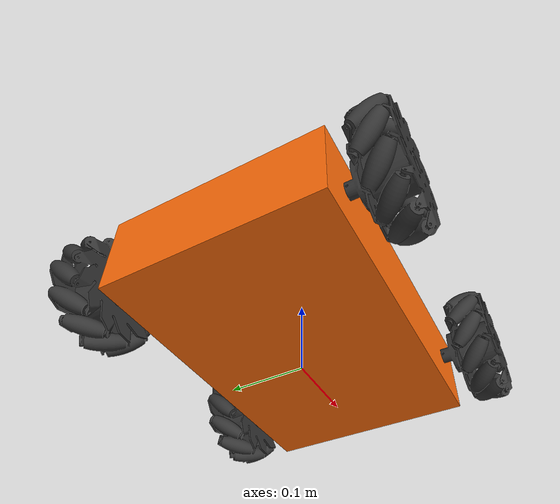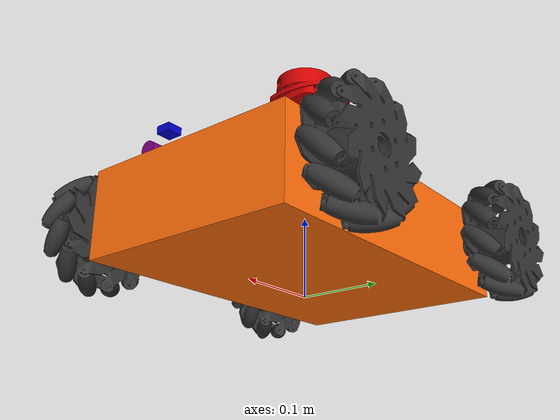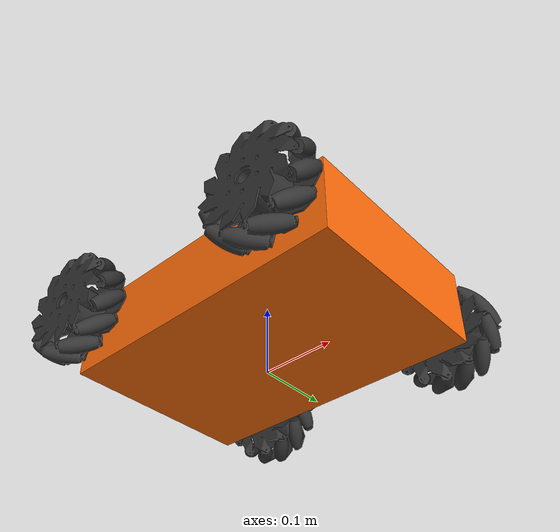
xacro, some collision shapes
<?xml version="1.0"?>
<robot xmlns:xacro="http://www.ros.org/wiki/xacro" name="roboost_robot">
    <!-- Include properties -->
    <xacro:include filename="$(find roboost)/descriptions/properties/properties.xacro"/>

    <!-- Include chassis -->
    <xacro:include filename="$(find roboost)/descriptions/components/chassis.xacro"/>

    <!-- Include wheels -->
    <xacro:include filename="$(find roboost)/descriptions/components/wheels/mecanum_wheel_left.xacro"/>
    <xacro:include filename="$(find roboost)/descriptions/components/wheels/mecanum_wheel_right.xacro"/>

    <!-- Include sensors -->
    <xacro:include filename="$(find roboost)/descriptions/components/sensors/lidar.xacro"/>
    <xacro:include filename="$(find roboost)/descriptions/components/sensors/camera.xacro"/>
    <xacro:include filename="$(find roboost)/descriptions/components/sensors/imu.xacro"/>

    <!-- Base link -->
    <link name="base_link"/>

    <!-- Base Footprint link-->
    <link name="base_footprint"/>

    <joint name="base_joint" type="fixed">
        <parent link="base_link"/>
        <child link="base_footprint"/>
        <origin xyz="0.0 0.0 -${wheel_radius}" rpy="0.0 0.0 0.0"/>
    </joint>

    <!-- Chassis -->
    <xacro:chassis name="chassis" parent="base_link">
        <origin xyz="0.0 0.0 ${wheel_radius}" rpy="0.0 0.0 0.0"/>
    </xacro:chassis>

    <!-- Wheels -->
    <xacro:mecanum_wheel_left name="wheel_front_left" parent="chassis_link" mesh="file://$(find roboost)/meshes/Mecanum-Wheel-Left.STL">
        <origin xyz="${wheelbase / 2} ${track / 2} 0.0" rpy="${pi * 3 / 2} 0.0 0.0"/>
    </xacro:mecanum_wheel_left>

    <xacro:mecanum_wheel_right name="wheel_front_right" parent="chassis_link" mesh="file://$(find roboost)/meshes/Mecanum-Wheel-Right.STL">
        <origin xyz="${wheelbase / 2} -${track / 2} 0.0" rpy="${pi / 2} 0.0 0.0"/>
    </xacro:mecanum_wheel_right>

    <xacro:mecanum_wheel_left name="wheel_back_left" parent="chassis_link" mesh="file://$(find roboost)/meshes/Mecanum-Wheel-Left.STL">
        <origin xyz="-${wheelbase / 2} ${track / 2} 0.0" rpy="${pi * 3 / 2} 0.0 0.0"/>
    </xacro:mecanum_wheel_left>

    <xacro:mecanum_wheel_right name="wheel_back_right" parent="chassis_link" mesh="file://$(find roboost)/meshes/Mecanum-Wheel-Right.STL">
        <origin xyz="-${wheelbase / 2} -${track / 2} 0.0" rpy="${pi / 2} 0.0 0.0"/>
    </xacro:mecanum_wheel_right>

    <!-- Sensors -->
    <xacro:lidar name="lidar" parent="chassis_link">
        <origin xyz="0.057 0.045 ${chassis_height + lidar_height}" rpy="${pi} 0.0 ${pi * 3/ 2}"/>
    </xacro:lidar>

    <xacro:camera name="camera" parent="chassis_link">
        <origin xyz="${chassis_length / 2 - 0.03} -0.08 ${chassis_height - 0.035}" rpy="0.0 0.0 0.0"/>
    </xacro:camera>

    <xacro:imu name="imu" parent="chassis_link">
        <origin xyz="${chassis_length / 2 - 0.05} -0.08 ${chassis_height}" rpy="0.0 0.0 0.0"/>
    </xacro:imu>

    <gazebo>
        <plugin name="gazebo_ros_control" filename="libgazebo_ros_planar_move.so">
            <commandTopic>cmd_vel</commandTopic>
            <odometryTopic>odom</odometryTopic>
            <odometryFrame>odom</odometryFrame>
            <robotBaseFrame>base_link</robotBaseFrame>
            <publishOdom>true</publishOdom>
            <publishOdomTF>true</publishOdomTF>
            <publishWheelTF>true</publishWheelTF>
            <publishTf>true</publishTf>
            <publishWheelJointState>true</publishWheelJointState>
        </plugin>
    </gazebo>
</robot>

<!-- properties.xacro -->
<robot xmlns:xacro="http://www.ros.org/wiki/xacro">
  <xacro:property name="chassis_length" value="0.42"/>
  <xacro:property name="chassis_width" value="0.28"/>
  <xacro:property name="chassis_height" value="0.108"/>
  <xacro:property name="chassis_mass" value="20.0"/>

  <xacro:property name="wheel_radius" value="0.075"/>
  <xacro:property name="wheel_width" value="0.05"/>
  <xacro:property name="wheel_mass" value="1.0"/>

  <xacro:property name="lidar_height" value="0.0575"/>

  <xacro:property name="wheelbase" value="0.3185"/>
  <xacro:property name="track" value="0.38"/>
</robot>

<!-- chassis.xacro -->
<robot xmlns:xacro="http://www.ros.org/wiki/xacro">
  <xacro:include filename="$(find roboost)/robot_descriptions/properties/properties.xacro"/>
  <xacro:include filename="$(find roboost)/robot_descriptions/materials/materials.xacro"/>
  <xacro:include filename="$(find roboost)/robot_descriptions/macros/inertia_macros.xacro"/>

  <!-- Chassis macro definition -->
  <xacro:macro name="chassis" params="name parent *joint_origin">
    <link name="${name}_link">
      <visual>
        <geometry>
          <mesh filename="file://$(find roboost)/meshes/Chassis.STL" scale="0.001 0.001 0.001"/>
        </geometry>
        <origin xyz="0.0 0.0 0.0" rpy="${pi / 2} 0.0 0.0"/>
        <material name="orange"/>
      </visual>
      <collision>
        <geometry>
          <box size="${chassis_length} ${chassis_width} ${chassis_height}"/>
        </geometry>
        <origin xyz="0.0 0.0 0.0" rpy="0.0 0.0 0.0"/>
      </collision>
      <inertial>
        <mass value="${chassis_mass}"/>
        <origin xyz="0.0 0.0 ${chassis_height / 2}" rpy="0.0 0.0 0.0"/>
        <xacro:box_inertia mass="${chassis_mass}" x="${chassis_length}" y="${chassis_width}" z="${chassis_height}"/>
      </inertial>
    </link>

    <!-- Define a fixed joint to connect the chassis to the parent link -->
    <joint name="${name}_joint" type="fixed">
      <parent link="${parent}"/>
      <child link="${name}_link"/>
      <xacro:insert_block name="joint_origin"/>
    </joint>

    <gazebo reference="${name}_link">
        <material>Gazebo/Orange</material>
    </gazebo>
  </xacro:macro>
</robot>

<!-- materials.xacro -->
<robot xmlns:xacro="http://www.ros.org/wiki/xacro">
    <material name="black">
        <color rgba="0 0 0 1"/>
    </material>
    <material name="grey">
        <color rgba="0.2 0.2 0.2 1.0"/>
    </material>
    <material name="silver">
        <color rgba="0.6 0.6 0.6 1.0"/>
    </material>
    <material name="orange">
        <color rgba="1.0 0.423 0.039 1.0"/>
    </material>
    <material name="red">
        <color rgba="0.8 0.0 0.0 1.0"/>
    </material>
    <material name="green">
        <color rgba="0.0 0.8 0.0 1.0"/>
    </material>
    <material name="blue">
        <color rgba="0.0 0.0 0.8 1.0"/>
    </material>
    <material name="purple">
        <color rgba="0.5 0.0 0.5 1.0"/>
    </material>
</robot>

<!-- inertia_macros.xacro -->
<robot xmlns:xacro="http://www.ros.org/wiki/xacro">
  <xacro:macro name="cylinder_inertia" params="mass radius length">
    <inertia ixx="${mass * (3 * radius * radius + length * length) / 12}"
             ixy="0.0"
             ixz="0.0"
             iyy="${mass * (3 * radius * radius + length * length) / 12}"
             iyz="0.0"
             izz="${mass * radius * radius / 2}"/>
  </xacro:macro>

  <xacro:macro name="box_inertia" params="mass x y z">
    <inertia ixx="${mass * (y * y + z * z) / 12}"
             ixy="0.0"
             ixz="0.0"
             iyy="${mass * (x * x + z * z) / 12}"
             iyz="0.0"
             izz="${mass * (x * x + y * y) / 12}"/>
  </xacro:macro>
</robot>

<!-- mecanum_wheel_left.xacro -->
<robot xmlns:xacro="http://www.ros.org/wiki/xacro">
    <xacro:macro name="mecanum_wheel_left" params="name parent mesh *origin">
        <link name="${name}_link">
            <visual>
                <geometry>
                    <mesh filename="${mesh}" scale="0.001 0.001 0.001"/>
                </geometry>
                <origin xyz="0.0 0.0 0.0" rpy="0.0 0.0 0.0"/>
                <material name="grey"/>
            </visual>
            <collision>
                <geometry>
                    <cylinder radius="${wheel_radius}" length="${wheel_width}"/>
                </geometry>
                <origin xyz="0.0 0.0 0.0" rpy="0.0 0.0 0.0"/>
            </collision>
            <inertial>
                <mass value="${wheel_mass}"/>
                <origin xyz="0.0 0.0 ${wheel_width / 2}" rpy="0.0 0.0 0.0"/>
                <xacro:cylinder_inertia mass="${wheel_mass}" radius="${wheel_radius}" length="${wheel_width}"/>
            </inertial>
        </link>
        <gazebo reference="${name}_link">
            <material>Gazebo/Grey</material>
            <mu1 value="1.0"/>
            <mu2 value="1.0"/>
            <kp value="1000000.0"/>
            <kd value="1.0"/>
            <fdir1 value="1 0 0"/>
            <turnGravityOff>false</turnGravityOff>
        </gazebo>
        <joint name="${name}_joint" type="continuous">
            <parent link="${parent}"/>
            <child link="${name}_link"/>
            <xacro:insert_block name="origin"/>
            <axis xyz="0 0 1"/>
            <limit effort="100.0" velocity="100.0"/>
            <dynamics damping="0.0" friction="0.0"/>
        </joint>
        <transmission name="${name}_transmission">
            <type>transmission_interface/SimpleTransmission</type>
            <joint name="${name}_joint">
                <hardwareInterface>hardware_interface/EffortJointInterface</hardwareInterface>
            </joint>
            <actuator name="${name}_motor">
                <hardwareInterface>hardware_interface/EffortJointInterface</hardwareInterface>
                <mechanicalReduction>1</mechanicalReduction>
            </actuator>
        </transmission>
    </xacro:macro>
</robot>

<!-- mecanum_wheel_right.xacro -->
<robot xmlns:xacro="http://www.ros.org/wiki/xacro">
    <xacro:macro name="mecanum_wheel_right" params="name parent mesh *origin">
        <link name="${name}_link">
            <visual>
                <geometry>
                    <mesh filename="${mesh}" scale="0.001 0.001 0.001"/>
                </geometry>
                <origin xyz="0.0 0.0 0.0" rpy="0.0 0.0 0.0"/>
                <material name="grey"/>
            </visual>
            <collision>
                <geometry>
                    <cylinder radius="${wheel_radius}" length="${wheel_width}"/>
                </geometry>
                <origin xyz="0.0 0.0 0.0" rpy="0.0 0.0 0.0"/>
            </collision>
            <inertial>
                <mass value="${wheel_mass}"/>
                <origin xyz="0.0 0.0 ${wheel_width / 2}" rpy="0.0 0.0 0.0"/>
                <xacro:cylinder_inertia mass="${wheel_mass}" radius="${wheel_radius}" length="${wheel_width}"/>
            </inertial>
        </link>
        <gazebo reference="${name}_link">
            <material>Gazebo/Grey</material>
            <mu1 value="1.0"/>
            <mu2 value="1.0"/>
            <kp value="1000000.0"/>
            <kd value="1.0"/>
            <fdir1 value="1 0 0"/>
            <turnGravityOff>false</turnGravityOff>
        </gazebo>
        <joint name="${name}_joint" type="continuous">
            <parent link="${parent}"/>
            <child link="${name}_link"/>
            <xacro:insert_block name="origin"/>
            <axis xyz="0 0 1"/>
            <limit effort="100.0" velocity="100.0"/>
            <dynamics damping="0.0" friction="0.0"/>
        </joint>
        <transmission name="${name}_transmission">
            <type>transmission_interface/SimpleTransmission</type>
            <joint name="${name}_joint">
                <hardwareInterface>hardware_interface/EffortJointInterface</hardwareInterface>
            </joint>
            <actuator name="${name}_motor">
                <hardwareInterface>hardware_interface/EffortJointInterface</hardwareInterface>
                <mechanicalReduction>1</mechanicalReduction>
            </actuator>
        </transmission>
    </xacro:macro>
</robot>

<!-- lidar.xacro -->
<robot xmlns:xacro="http://www.ros.org/wiki/xacro">
    <xacro:macro name="lidar" params="name parent *origin">
        <link name="${name}_link">
            <visual>
                <geometry>
                    <mesh filename="file://$(find roboost)/meshes/RP-LiDAR.STL" scale="0.001 0.001 0.001"/>
                </geometry>
                <origin xyz="0.0 0.0 0.042" rpy="-${pi / 2} 0.0 ${pi}"/>
                <material name="red"/>
            </visual>
            <collision>
                <geometry>
                    <cylinder radius="0.05" length="0.05"/>
                </geometry>
                <origin xyz="0.0 0.0 0.0" rpy="0.0 0.0 0.0"/>
            </collision>
            <inertial>
                <mass value="1.0"/>
                <origin xyz="0.0 0.0 0.0" rpy="0.0 0.0 0.0"/>
                <xacro:cylinder_inertia mass="1.0" radius="0.05" length="0.05"/>
            </inertial>
        </link>
        <gazebo reference="${name}_link">
            <material>Gazebo/Red</material>
            <sensor name="${name}_sensor" type="ray">
                <pose>0 0 0 0 0 0</pose>
                <visualize>false</visualize>
                <update_rate>10</update_rate>
                <ray>
                    <scan>
                        <horizontal>
                            <samples>360</samples>
                            <resolution>1</resolution>
                            <min_angle>0</min_angle>
                            <max_angle>6.28319</max_angle>
                        </horizontal>
                    </scan>
                    <range>
                        <min>0.2</min>
                        <max>12.0</max>
                        <resolution>0.01</resolution>
                    </range>
                    <noise>
                        <type>gaussian</type>
                        <mean>0.0</mean>
                        <stddev>0.01</stddev>
                    </noise>
                </ray>
                <plugin name="gazebo_ros_ray_sensor" filename="libgazebo_ros_ray_sensor.so">
                    <ros>
                        <argument>~/out:=scan</argument>
                    </ros>
                    <output_type>sensor_msgs/LaserScan</output_type>
                    <frame_name>${name}_link</frame_name>

                </plugin>
            </sensor>
        </gazebo>
        <joint name="${name}_joint" type="fixed">
            <parent link="${parent}"/>
            <child link="${name}_link"/>
            <xacro:insert_block name="origin"/>
        </joint>
    </xacro:macro>
</robot>

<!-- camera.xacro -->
<robot xmlns:xacro="http://www.ros.org/wiki/xacro">
    <xacro:macro name="camera" params="name parent *origin">
        <link name="${name}_link">
            <visual>
                <geometry>
                    <cylinder radius="0.01" length="0.02"/>
                    <box size="0.02 0.02 0.01"/>
                </geometry>
                <origin xyz="0.0 0.0 0.0" rpy="0.0 ${pi / 2} 0.0"/>
                <material name="purple"/>
            </visual>
        </link>
        <gazebo reference="${name}_link">
            <material>Gazebo/Purple</material>
        </gazebo>
        <joint name="${name}_joint" type="fixed">
            <parent link="${parent}"/>
            <child link="${name}_link"/>
            <xacro:insert_block name="origin"/>
        </joint>

        <link name="${name}_link_optical"/>
        <joint name="${name}_optical_joint" type="fixed">
            <parent link="${name}_link"/>
            <child link="${name}_link_optical"/>
            <origin xyz="0.0 0.0 0.0" rpy="${-pi/2} 0.0 ${-pi/2}"/>
        </joint>

        <gazebo reference="${name}_link">
            <sensor type="camera" name="${name}_sensor">
                <update_rate>20</update_rate>
                <visualize>true</visualize>
                <camera name="${name}_camera">
                    <horizontal_fov>1.3962634</horizontal_fov>
                    <image>
                        <width>640</width>
                        <height>480</height>
                        <format>R8B8G8</format>
                    </image>
                    <clip>
                        <near>0.02</near>
                        <far>10</far>
                    </clip>
                    <noise>
                        <type>gaussian</type>
                        <mean>0.0</mean>
                        <stddev>0.007</stddev>
                    </noise>
                </camera>
                <plugin name="camera_controller" filename="libgazebo_ros_camera.so">
                    <frame_name>camera_link_optical</frame_name>
                    <min_depth>0.1</min_depth>
                    <max_depth>500</max_depth>
                </plugin>
            </sensor>
        </gazebo>

    </xacro:macro>
</robot>

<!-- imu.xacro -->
<robot xmlns:xacro="http://www.ros.org/wiki/xacro">
    <xacro:macro name="imu" params="name parent *origin">
        <link name="${name}_link">
            <visual>
                <geometry>
                    <box size="0.02 0.02 0.01"/>
                </geometry>
            <origin xyz="0.0 0.0 0.0" rpy="0.0 0.0 0.0"/>
                <material name="blue"/>
            </visual>
        </link>
        <gazebo reference="${name}_link">
            <material>Gazebo/Blue</material>
        </gazebo>
        <joint name="${name}_joint" type="fixed">
            <parent link="${parent}"/>
            <child link="${name}_link"/>
            <xacro:insert_block name="origin"/>
        </joint>
    </xacro:macro>
</robot>
